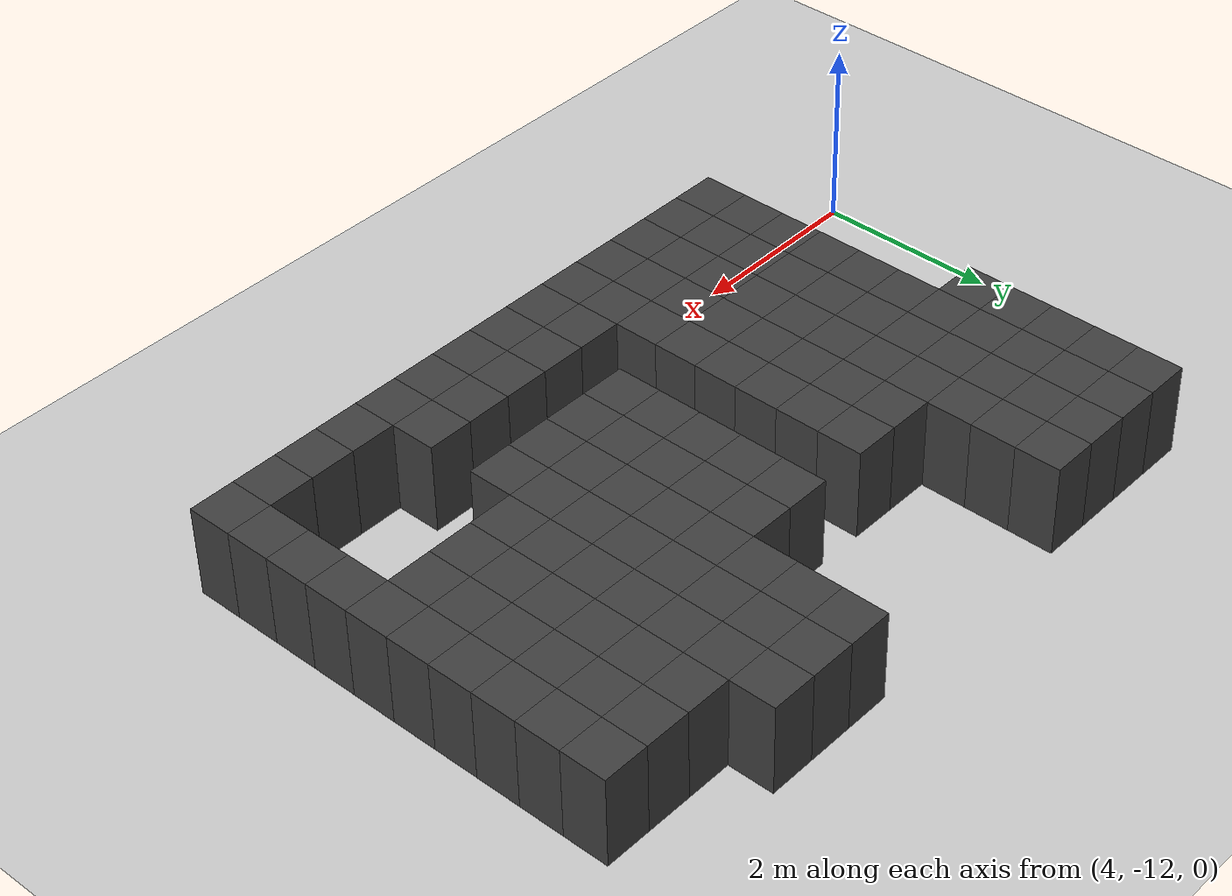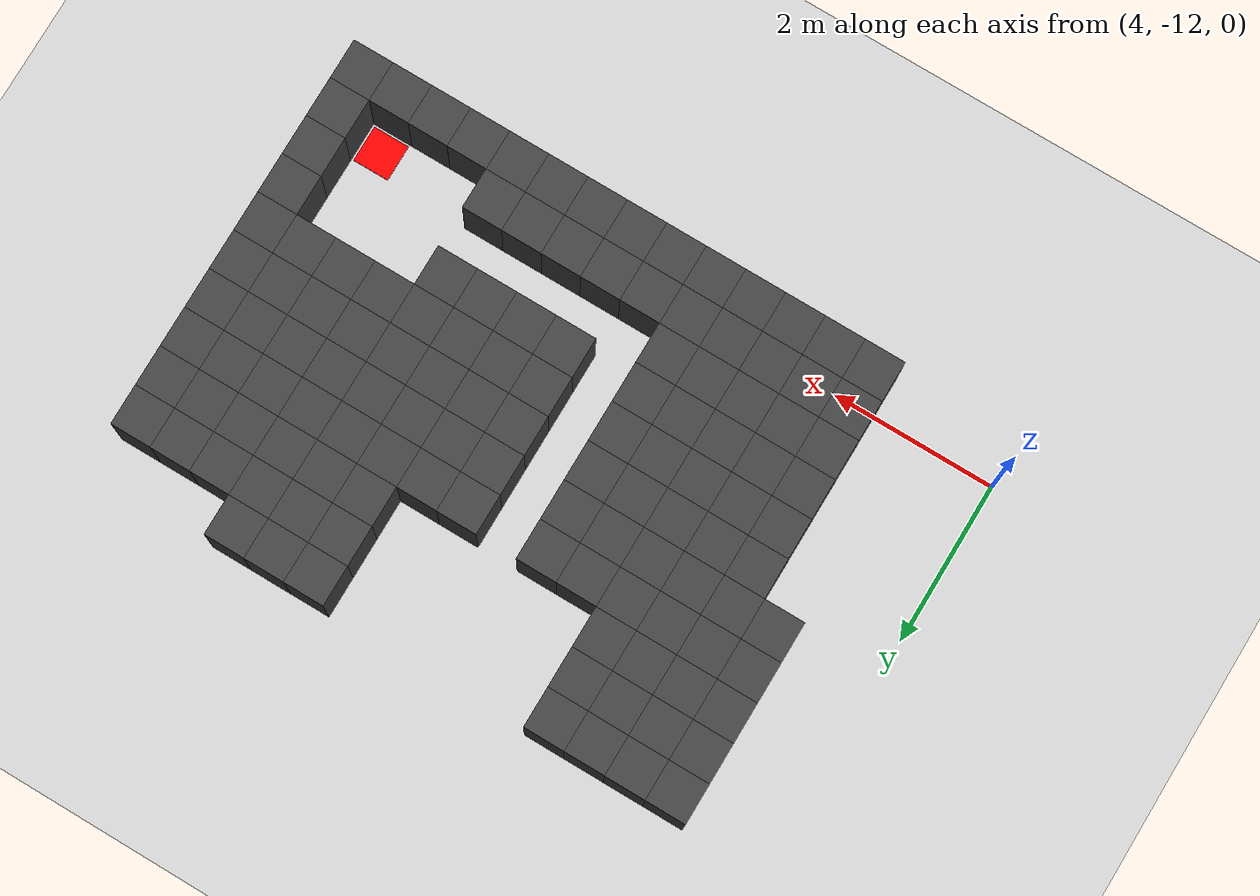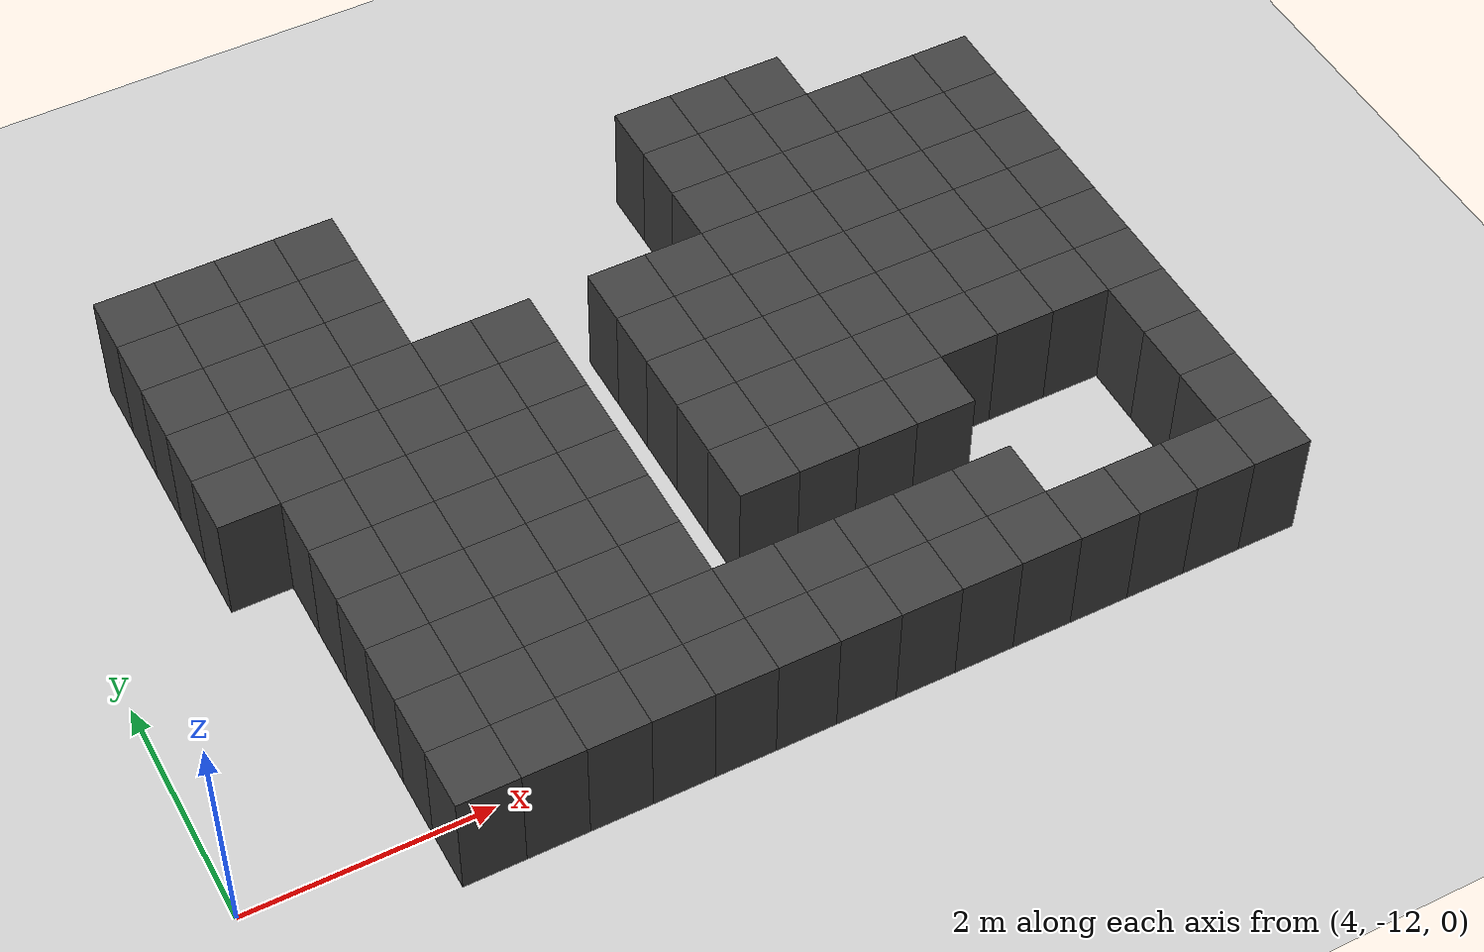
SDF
<sdf version="1.7">
 <world name="map_14074">
  <model name="ground_plane">
   <static>true</static>
   <link name="link">
    <collision name="collision">
     <geometry><plane><normal>0 0 1</normal><size>200 200</size></plane></geometry>
    </collision>
    <visual name="visual">
     <geometry><plane><normal>0 0 1</normal><size>200 200</size></plane></geometry>
     <material><ambient>0.8 0.8 0.8 1</ambient><diffuse>0.8 0.8 0.8 1</diffuse></material>
    </visual>
   </link>
  </model>
  <model name="maze_environment">
   <static>true</static>
   <link name="wall_1442">
    <pose>5.250 -7.250 0.500 0 0 0</pose>
    <collision name="col"><geometry><box><size>0.5 0.5 1.0</size></box></geometry></collision>
    <visual name="vis">
     <geometry><box><size>0.5 0.5 1.0</size></box></geometry>
     <material><ambient>0.15 0.15 0.15 1</ambient><diffuse>0.25 0.25 0.25 1</diffuse></material>
    </visual>
   </link>
   <link name="wall_1443">
    <pose>5.750 -7.250 0.500 0 0 0</pose>
    <collision name="col"><geometry><box><size>0.5 0.5 1.0</size></box></geometry></collision>
    <visual name="vis">
     <geometry><box><size>0.5 0.5 1.0</size></box></geometry>
     <material><ambient>0.15 0.15 0.15 1</ambient><diffuse>0.25 0.25 0.25 1</diffuse></material>
    </visual>
   </link>
   <link name="wall_1444">
    <pose>6.250 -7.250 0.500 0 0 0</pose>
    <collision name="col"><geometry><box><size>0.5 0.5 1.0</size></box></geometry></collision>
    <visual name="vis">
     <geometry><box><size>0.5 0.5 1.0</size></box></geometry>
     <material><ambient>0.15 0.15 0.15 1</ambient><diffuse>0.25 0.25 0.25 1</diffuse></material>
    </visual>
   </link>
   <link name="wall_1445">
    <pose>6.750 -7.250 0.500 0 0 0</pose>
    <collision name="col"><geometry><box><size>0.5 0.5 1.0</size></box></geometry></collision>
    <visual name="vis">
     <geometry><box><size>0.5 0.5 1.0</size></box></geometry>
     <material><ambient>0.15 0.15 0.15 1</ambient><diffuse>0.25 0.25 0.25 1</diffuse></material>
    </visual>
   </link>
   <link name="wall_1446">
    <pose>9.750 -7.250 0.500 0 0 0</pose>
    <collision name="col"><geometry><box><size>0.5 0.5 1.0</size></box></geometry></collision>
    <visual name="vis">
     <geometry><box><size>0.5 0.5 1.0</size></box></geometry>
     <material><ambient>0.15 0.15 0.15 1</ambient><diffuse>0.25 0.25 0.25 1</diffuse></material>
    </visual>
   </link>
   <link name="wall_1447">
    <pose>10.250 -7.250 0.500 0 0 0</pose>
    <collision name="col"><geometry><box><size>0.5 0.5 1.0</size></box></geometry></collision>
    <visual name="vis">
     <geometry><box><size>0.5 0.5 1.0</size></box></geometry>
     <material><ambient>0.15 0.15 0.15 1</ambient><diffuse>0.25 0.25 0.25 1</diffuse></material>
    </visual>
   </link>
   <link name="wall_1448">
    <pose>10.750 -7.250 0.500 0 0 0</pose>
    <collision name="col"><geometry><box><size>0.5 0.5 1.0</size></box></geometry></collision>
    <visual name="vis">
     <geometry><box><size>0.5 0.5 1.0</size></box></geometry>
     <material><ambient>0.15 0.15 0.15 1</ambient><diffuse>0.25 0.25 0.25 1</diffuse></material>
    </visual>
   </link>
   <link name="wall_1467">
    <pose>5.250 -7.750 0.500 0 0 0</pose>
    <collision name="col"><geometry><box><size>0.5 0.5 1.0</size></box></geometry></collision>
    <visual name="vis">
     <geometry><box><size>0.5 0.5 1.0</size></box></geometry>
     <material><ambient>0.15 0.15 0.15 1</ambient><diffuse>0.25 0.25 0.25 1</diffuse></material>
    </visual>
   </link>
   <link name="wall_1468">
    <pose>5.750 -7.750 0.500 0 0 0</pose>
    <collision name="col"><geometry><box><size>0.5 0.5 1.0</size></box></geometry></collision>
    <visual name="vis">
     <geometry><box><size>0.5 0.5 1.0</size></box></geometry>
     <material><ambient>0.15 0.15 0.15 1</ambient><diffuse>0.25 0.25 0.25 1</diffuse></material>
    </visual>
   </link>
   <link name="wall_1469">
    <pose>6.250 -7.750 0.500 0 0 0</pose>
    <collision name="col"><geometry><box><size>0.5 0.5 1.0</size></box></geometry></collision>
    <visual name="vis">
     <geometry><box><size>0.5 0.5 1.0</size></box></geometry>
     <material><ambient>0.15 0.15 0.15 1</ambient><diffuse>0.25 0.25 0.25 1</diffuse></material>
    </visual>
   </link>
   <link name="wall_1470">
    <pose>6.750 -7.750 0.500 0 0 0</pose>
    <collision name="col"><geometry><box><size>0.5 0.5 1.0</size></box></geometry></collision>
    <visual name="vis">
     <geometry><box><size>0.5 0.5 1.0</size></box></geometry>
     <material><ambient>0.15 0.15 0.15 1</ambient><diffuse>0.25 0.25 0.25 1</diffuse></material>
    </visual>
   </link>
   <link name="wall_1471">
    <pose>9.750 -7.750 0.500 0 0 0</pose>
    <collision name="col"><geometry><box><size>0.5 0.5 1.0</size></box></geometry></collision>
    <visual name="vis">
     <geometry><box><size>0.5 0.5 1.0</size></box></geometry>
     <material><ambient>0.15 0.15 0.15 1</ambient><diffuse>0.25 0.25 0.25 1</diffuse></material>
    </visual>
   </link>
   <link name="wall_1472">
    <pose>10.250 -7.750 0.500 0 0 0</pose>
    <collision name="col"><geometry><box><size>0.5 0.5 1.0</size></box></geometry></collision>
    <visual name="vis">
     <geometry><box><size>0.5 0.5 1.0</size></box></geometry>
     <material><ambient>0.15 0.15 0.15 1</ambient><diffuse>0.25 0.25 0.25 1</diffuse></material>
    </visual>
   </link>
   <link name="wall_1473">
    <pose>10.750 -7.750 0.500 0 0 0</pose>
    <collision name="col"><geometry><box><size>0.5 0.5 1.0</size></box></geometry></collision>
    <visual name="vis">
     <geometry><box><size>0.5 0.5 1.0</size></box></geometry>
     <material><ambient>0.15 0.15 0.15 1</ambient><diffuse>0.25 0.25 0.25 1</diffuse></material>
    </visual>
   </link>
   <link name="wall_1474">
    <pose>11.250 -7.750 0.500 0 0 0</pose>
    <collision name="col"><geometry><box><size>0.5 0.5 1.0</size></box></geometry></collision>
    <visual name="vis">
     <geometry><box><size>0.5 0.5 1.0</size></box></geometry>
     <material><ambient>0.15 0.15 0.15 1</ambient><diffuse>0.25 0.25 0.25 1</diffuse></material>
    </visual>
   </link>
   <link name="wall_1475">
    <pose>11.750 -7.750 0.500 0 0 0</pose>
    <collision name="col"><geometry><box><size>0.5 0.5 1.0</size></box></geometry></collision>
    <visual name="vis">
     <geometry><box><size>0.5 0.5 1.0</size></box></geometry>
     <material><ambient>0.15 0.15 0.15 1</ambient><diffuse>0.25 0.25 0.25 1</diffuse></material>
    </visual>
   </link>
   <link name="wall_1476">
    <pose>12.250 -7.750 0.500 0 0 0</pose>
    <collision name="col"><geometry><box><size>0.5 0.5 1.0</size></box></geometry></collision>
    <visual name="vis">
     <geometry><box><size>0.5 0.5 1.0</size></box></geometry>
     <material><ambient>0.15 0.15 0.15 1</ambient><diffuse>0.25 0.25 0.25 1</diffuse></material>
    </visual>
   </link>
   <link name="wall_1494">
    <pose>5.250 -8.250 0.500 0 0 0</pose>
    <collision name="col"><geometry><box><size>0.5 0.5 1.0</size></box></geometry></collision>
    <visual name="vis">
     <geometry><box><size>0.5 0.5 1.0</size></box></geometry>
     <material><ambient>0.15 0.15 0.15 1</ambient><diffuse>0.25 0.25 0.25 1</diffuse></material>
    </visual>
   </link>
   <link name="wall_1495">
    <pose>5.750 -8.250 0.500 0 0 0</pose>
    <collision name="col"><geometry><box><size>0.5 0.5 1.0</size></box></geometry></collision>
    <visual name="vis">
     <geometry><box><size>0.5 0.5 1.0</size></box></geometry>
     <material><ambient>0.15 0.15 0.15 1</ambient><diffuse>0.25 0.25 0.25 1</diffuse></material>
    </visual>
   </link>
   <link name="wall_1496">
    <pose>6.250 -8.250 0.500 0 0 0</pose>
    <collision name="col"><geometry><box><size>0.5 0.5 1.0</size></box></geometry></collision>
    <visual name="vis">
     <geometry><box><size>0.5 0.5 1.0</size></box></geometry>
     <material><ambient>0.15 0.15 0.15 1</ambient><diffuse>0.25 0.25 0.25 1</diffuse></material>
    </visual>
   </link>
   <link name="wall_1497">
    <pose>6.750 -8.250 0.500 0 0 0</pose>
    <collision name="col"><geometry><box><size>0.5 0.5 1.0</size></box></geometry></collision>
    <visual name="vis">
     <geometry><box><size>0.5 0.5 1.0</size></box></geometry>
     <material><ambient>0.15 0.15 0.15 1</ambient><diffuse>0.25 0.25 0.25 1</diffuse></material>
    </visual>
   </link>
   <link name="wall_1498">
    <pose>9.750 -8.250 0.500 0 0 0</pose>
    <collision name="col"><geometry><box><size>0.5 0.5 1.0</size></box></geometry></collision>
    <visual name="vis">
     <geometry><box><size>0.5 0.5 1.0</size></box></geometry>
     <material><ambient>0.15 0.15 0.15 1</ambient><diffuse>0.25 0.25 0.25 1</diffuse></material>
    </visual>
   </link>
   <link name="wall_1499">
    <pose>10.250 -8.250 0.500 0 0 0</pose>
    <collision name="col"><geometry><box><size>0.5 0.5 1.0</size></box></geometry></collision>
    <visual name="vis">
     <geometry><box><size>0.5 0.5 1.0</size></box></geometry>
     <material><ambient>0.15 0.15 0.15 1</ambient><diffuse>0.25 0.25 0.25 1</diffuse></material>
    </visual>
   </link>
   <link name="wall_1500">
    <pose>10.750 -8.250 0.500 0 0 0</pose>
    <collision name="col"><geometry><box><size>0.5 0.5 1.0</size></box></geometry></collision>
    <visual name="vis">
     <geometry><box><size>0.5 0.5 1.0</size></box></geometry>
     <material><ambient>0.15 0.15 0.15 1</ambient><diffuse>0.25 0.25 0.25 1</diffuse></material>
    </visual>
   </link>
   <link name="wall_1501">
    <pose>11.250 -8.250 0.500 0 0 0</pose>
    <collision name="col"><geometry><box><size>0.5 0.5 1.0</size></box></geometry></collision>
    <visual name="vis">
     <geometry><box><size>0.5 0.5 1.0</size></box></geometry>
     <material><ambient>0.15 0.15 0.15 1</ambient><diffuse>0.25 0.25 0.25 1</diffuse></material>
    </visual>
   </link>
   <link name="wall_1502">
    <pose>11.750 -8.250 0.500 0 0 0</pose>
    <collision name="col"><geometry><box><size>0.5 0.5 1.0</size></box></geometry></collision>
    <visual name="vis">
     <geometry><box><size>0.5 0.5 1.0</size></box></geometry>
     <material><ambient>0.15 0.15 0.15 1</ambient><diffuse>0.25 0.25 0.25 1</diffuse></material>
    </visual>
   </link>
   <link name="wall_1503">
    <pose>12.250 -8.250 0.500 0 0 0</pose>
    <collision name="col"><geometry><box><size>0.5 0.5 1.0</size></box></geometry></collision>
    <visual name="vis">
     <geometry><box><size>0.5 0.5 1.0</size></box></geometry>
     <material><ambient>0.15 0.15 0.15 1</ambient><diffuse>0.25 0.25 0.25 1</diffuse></material>
    </visual>
   </link>
   <link name="wall_1529">
    <pose>5.250 -8.750 0.500 0 0 0</pose>
    <collision name="col"><geometry><box><size>0.5 0.5 1.0</size></box></geometry></collision>
    <visual name="vis">
     <geometry><box><size>0.5 0.5 1.0</size></box></geometry>
     <material><ambient>0.15 0.15 0.15 1</ambient><diffuse>0.25 0.25 0.25 1</diffuse></material>
    </visual>
   </link>
   <link name="wall_1530">
    <pose>5.750 -8.750 0.500 0 0 0</pose>
    <collision name="col"><geometry><box><size>0.5 0.5 1.0</size></box></geometry></collision>
    <visual name="vis">
     <geometry><box><size>0.5 0.5 1.0</size></box></geometry>
     <material><ambient>0.15 0.15 0.15 1</ambient><diffuse>0.25 0.25 0.25 1</diffuse></material>
    </visual>
   </link>
   <link name="wall_1531">
    <pose>6.250 -8.750 0.500 0 0 0</pose>
    <collision name="col"><geometry><box><size>0.5 0.5 1.0</size></box></geometry></collision>
    <visual name="vis">
     <geometry><box><size>0.5 0.5 1.0</size></box></geometry>
     <material><ambient>0.15 0.15 0.15 1</ambient><diffuse>0.25 0.25 0.25 1</diffuse></material>
    </visual>
   </link>
   <link name="wall_1532">
    <pose>6.750 -8.750 0.500 0 0 0</pose>
    <collision name="col"><geometry><box><size>0.5 0.5 1.0</size></box></geometry></collision>
    <visual name="vis">
     <geometry><box><size>0.5 0.5 1.0</size></box></geometry>
     <material><ambient>0.15 0.15 0.15 1</ambient><diffuse>0.25 0.25 0.25 1</diffuse></material>
    </visual>
   </link>
   <link name="wall_1533">
    <pose>7.250 -8.750 0.500 0 0 0</pose>
    <collision name="col"><geometry><box><size>0.5 0.5 1.0</size></box></geometry></collision>
    <visual name="vis">
     <geometry><box><size>0.5 0.5 1.0</size></box></geometry>
     <material><ambient>0.15 0.15 0.15 1</ambient><diffuse>0.25 0.25 0.25 1</diffuse></material>
    </visual>
   </link>
   <link name="wall_1534">
    <pose>7.750 -8.750 0.500 0 0 0</pose>
    <collision name="col"><geometry><box><size>0.5 0.5 1.0</size></box></geometry></collision>
    <visual name="vis">
     <geometry><box><size>0.5 0.5 1.0</size></box></geometry>
     <material><ambient>0.15 0.15 0.15 1</ambient><diffuse>0.25 0.25 0.25 1</diffuse></material>
    </visual>
   </link>
   <link name="wall_1535">
    <pose>8.750 -8.750 0.500 0 0 0</pose>
    <collision name="col"><geometry><box><size>0.5 0.5 1.0</size></box></geometry></collision>
    <visual name="vis">
     <geometry><box><size>0.5 0.5 1.0</size></box></geometry>
     <material><ambient>0.15 0.15 0.15 1</ambient><diffuse>0.25 0.25 0.25 1</diffuse></material>
    </visual>
   </link>
   <link name="wall_1536">
    <pose>9.250 -8.750 0.500 0 0 0</pose>
    <collision name="col"><geometry><box><size>0.5 0.5 1.0</size></box></geometry></collision>
    <visual name="vis">
     <geometry><box><size>0.5 0.5 1.0</size></box></geometry>
     <material><ambient>0.15 0.15 0.15 1</ambient><diffuse>0.25 0.25 0.25 1</diffuse></material>
    </visual>
   </link>
   <link name="wall_1537">
    <pose>9.750 -8.750 0.500 0 0 0</pose>
    <collision name="col"><geometry><box><size>0.5 0.5 1.0</size></box></geometry></collision>
    <visual name="vis">
     <geometry><box><size>0.5 0.5 1.0</size></box></geometry>
     <material><ambient>0.15 0.15 0.15 1</ambient><diffuse>0.25 0.25 0.25 1</diffuse></material>
    </visual>
   </link>
   <link name="wall_1538">
    <pose>10.250 -8.750 0.500 0 0 0</pose>
    <collision name="col"><geometry><box><size>0.5 0.5 1.0</size></box></geometry></collision>
    <visual name="vis">
     <geometry><box><size>0.5 0.5 1.0</size></box></geometry>
     <material><ambient>0.15 0.15 0.15 1</ambient><diffuse>0.25 0.25 0.25 1</diffuse></material>
    </visual>
   </link>
   <link name="wall_1539">
    <pose>10.750 -8.750 0.500 0 0 0</pose>
    <collision name="col"><geometry><box><size>0.5 0.5 1.0</size></box></geometry></collision>
    <visual name="vis">
     <geometry><box><size>0.5 0.5 1.0</size></box></geometry>
     <material><ambient>0.15 0.15 0.15 1</ambient><diffuse>0.25 0.25 0.25 1</diffuse></material>
    </visual>
   </link>
   <link name="wall_1540">
    <pose>11.250 -8.750 0.500 0 0 0</pose>
    <collision name="col"><geometry><box><size>0.5 0.5 1.0</size></box></geometry></collision>
    <visual name="vis">
     <geometry><box><size>0.5 0.5 1.0</size></box></geometry>
     <material><ambient>0.15 0.15 0.15 1</ambient><diffuse>0.25 0.25 0.25 1</diffuse></material>
    </visual>
   </link>
   <link name="wall_1541">
    <pose>11.750 -8.750 0.500 0 0 0</pose>
    <collision name="col"><geometry><box><size>0.5 0.5 1.0</size></box></geometry></collision>
    <visual name="vis">
     <geometry><box><size>0.5 0.5 1.0</size></box></geometry>
     <material><ambient>0.15 0.15 0.15 1</ambient><diffuse>0.25 0.25 0.25 1</diffuse></material>
    </visual>
   </link>
   <link name="wall_1542">
    <pose>12.250 -8.750 0.500 0 0 0</pose>
    <collision name="col"><geometry><box><size>0.5 0.5 1.0</size></box></geometry></collision>
    <visual name="vis">
     <geometry><box><size>0.5 0.5 1.0</size></box></geometry>
     <material><ambient>0.15 0.15 0.15 1</ambient><diffuse>0.25 0.25 0.25 1</diffuse></material>
    </visual>
   </link>
   <link name="wall_1568">
    <pose>5.250 -9.250 0.500 0 0 0</pose>
    <collision name="col"><geometry><box><size>0.5 0.5 1.0</size></box></geometry></collision>
    <visual name="vis">
     <geometry><box><size>0.5 0.5 1.0</size></box></geometry>
     <material><ambient>0.15 0.15 0.15 1</ambient><diffuse>0.25 0.25 0.25 1</diffuse></material>
    </visual>
   </link>
   <link name="wall_1569">
    <pose>5.750 -9.250 0.500 0 0 0</pose>
    <collision name="col"><geometry><box><size>0.5 0.5 1.0</size></box></geometry></collision>
    <visual name="vis">
     <geometry><box><size>0.5 0.5 1.0</size></box></geometry>
     <material><ambient>0.15 0.15 0.15 1</ambient><diffuse>0.25 0.25 0.25 1</diffuse></material>
    </visual>
   </link>
   <link name="wall_1570">
    <pose>6.250 -9.250 0.500 0 0 0</pose>
    <collision name="col"><geometry><box><size>0.5 0.5 1.0</size></box></geometry></collision>
    <visual name="vis">
     <geometry><box><size>0.5 0.5 1.0</size></box></geometry>
     <material><ambient>0.15 0.15 0.15 1</ambient><diffuse>0.25 0.25 0.25 1</diffuse></material>
    </visual>
   </link>
   <link name="wall_1571">
    <pose>6.750 -9.250 0.500 0 0 0</pose>
    <collision name="col"><geometry><box><size>0.5 0.5 1.0</size></box></geometry></collision>
    <visual name="vis">
     <geometry><box><size>0.5 0.5 1.0</size></box></geometry>
     <material><ambient>0.15 0.15 0.15 1</ambient><diffuse>0.25 0.25 0.25 1</diffuse></material>
    </visual>
   </link>
   <link name="wall_1572">
    <pose>7.250 -9.250 0.500 0 0 0</pose>
    <collision name="col"><geometry><box><size>0.5 0.5 1.0</size></box></geometry></collision>
    <visual name="vis">
     <geometry><box><size>0.5 0.5 1.0</size></box></geometry>
     <material><ambient>0.15 0.15 0.15 1</ambient><diffuse>0.25 0.25 0.25 1</diffuse></material>
    </visual>
   </link>
   <link name="wall_1573">
    <pose>7.750 -9.250 0.500 0 0 0</pose>
    <collision name="col"><geometry><box><size>0.5 0.5 1.0</size></box></geometry></collision>
    <visual name="vis">
     <geometry><box><size>0.5 0.5 1.0</size></box></geometry>
     <material><ambient>0.15 0.15 0.15 1</ambient><diffuse>0.25 0.25 0.25 1</diffuse></material>
    </visual>
   </link>
   <link name="wall_1574">
    <pose>8.750 -9.250 0.500 0 0 0</pose>
    <collision name="col"><geometry><box><size>0.5 0.5 1.0</size></box></geometry></collision>
    <visual name="vis">
     <geometry><box><size>0.5 0.5 1.0</size></box></geometry>
     <material><ambient>0.15 0.15 0.15 1</ambient><diffuse>0.25 0.25 0.25 1</diffuse></material>
    </visual>
   </link>
   <link name="wall_1575">
    <pose>9.250 -9.250 0.500 0 0 0</pose>
    <collision name="col"><geometry><box><size>0.5 0.5 1.0</size></box></geometry></collision>
    <visual name="vis">
     <geometry><box><size>0.5 0.5 1.0</size></box></geometry>
     <material><ambient>0.15 0.15 0.15 1</ambient><diffuse>0.25 0.25 0.25 1</diffuse></material>
    </visual>
   </link>
   <link name="wall_1576">
    <pose>9.750 -9.250 0.500 0 0 0</pose>
    <collision name="col"><geometry><box><size>0.5 0.5 1.0</size></box></geometry></collision>
    <visual name="vis">
     <geometry><box><size>0.5 0.5 1.0</size></box></geometry>
     <material><ambient>0.15 0.15 0.15 1</ambient><diffuse>0.25 0.25 0.25 1</diffuse></material>
    </visual>
   </link>
   <link name="wall_1577">
    <pose>10.250 -9.250 0.500 0 0 0</pose>
    <collision name="col"><geometry><box><size>0.5 0.5 1.0</size></box></geometry></collision>
    <visual name="vis">
     <geometry><box><size>0.5 0.5 1.0</size></box></geometry>
     <material><ambient>0.15 0.15 0.15 1</ambient><diffuse>0.25 0.25 0.25 1</diffuse></material>
    </visual>
   </link>
   <link name="wall_1578">
    <pose>10.750 -9.250 0.500 0 0 0</pose>
    <collision name="col"><geometry><box><size>0.5 0.5 1.0</size></box></geometry></collision>
    <visual name="vis">
     <geometry><box><size>0.5 0.5 1.0</size></box></geometry>
     <material><ambient>0.15 0.15 0.15 1</ambient><diffuse>0.25 0.25 0.25 1</diffuse></material>
    </visual>
   </link>
   <link name="wall_1579">
    <pose>11.250 -9.250 0.500 0 0 0</pose>
    <collision name="col"><geometry><box><size>0.5 0.5 1.0</size></box></geometry></collision>
    <visual name="vis">
     <geometry><box><size>0.5 0.5 1.0</size></box></geometry>
     <material><ambient>0.15 0.15 0.15 1</ambient><diffuse>0.25 0.25 0.25 1</diffuse></material>
    </visual>
   </link>
   <link name="wall_1580">
    <pose>11.750 -9.250 0.500 0 0 0</pose>
    <collision name="col"><geometry><box><size>0.5 0.5 1.0</size></box></geometry></collision>
    <visual name="vis">
     <geometry><box><size>0.5 0.5 1.0</size></box></geometry>
     <material><ambient>0.15 0.15 0.15 1</ambient><diffuse>0.25 0.25 0.25 1</diffuse></material>
    </visual>
   </link>
   <link name="wall_1581">
    <pose>12.250 -9.250 0.500 0 0 0</pose>
    <collision name="col"><geometry><box><size>0.5 0.5 1.0</size></box></geometry></collision>
    <visual name="vis">
     <geometry><box><size>0.5 0.5 1.0</size></box></geometry>
     <material><ambient>0.15 0.15 0.15 1</ambient><diffuse>0.25 0.25 0.25 1</diffuse></material>
    </visual>
   </link>
   <link name="wall_1608">
    <pose>5.750 -9.750 0.500 0 0 0</pose>
    <collision name="col"><geometry><box><size>0.5 0.5 1.0</size></box></geometry></collision>
    <visual name="vis">
     <geometry><box><size>0.5 0.5 1.0</size></box></geometry>
     <material><ambient>0.15 0.15 0.15 1</ambient><diffuse>0.25 0.25 0.25 1</diffuse></material>
    </visual>
   </link>
   <link name="wall_1609">
    <pose>6.250 -9.750 0.500 0 0 0</pose>
    <collision name="col"><geometry><box><size>0.5 0.5 1.0</size></box></geometry></collision>
    <visual name="vis">
     <geometry><box><size>0.5 0.5 1.0</size></box></geometry>
     <material><ambient>0.15 0.15 0.15 1</ambient><diffuse>0.25 0.25 0.25 1</diffuse></material>
    </visual>
   </link>
   <link name="wall_1610">
    <pose>6.750 -9.750 0.500 0 0 0</pose>
    <collision name="col"><geometry><box><size>0.5 0.5 1.0</size></box></geometry></collision>
    <visual name="vis">
     <geometry><box><size>0.5 0.5 1.0</size></box></geometry>
     <material><ambient>0.15 0.15 0.15 1</ambient><diffuse>0.25 0.25 0.25 1</diffuse></material>
    </visual>
   </link>
   <link name="wall_1611">
    <pose>7.250 -9.750 0.500 0 0 0</pose>
    <collision name="col"><geometry><box><size>0.5 0.5 1.0</size></box></geometry></collision>
    <visual name="vis">
     <geometry><box><size>0.5 0.5 1.0</size></box></geometry>
     <material><ambient>0.15 0.15 0.15 1</ambient><diffuse>0.25 0.25 0.25 1</diffuse></material>
    </visual>
   </link>
   <link name="wall_1612">
    <pose>7.750 -9.750 0.500 0 0 0</pose>
    <collision name="col"><geometry><box><size>0.5 0.5 1.0</size></box></geometry></collision>
    <visual name="vis">
     <geometry><box><size>0.5 0.5 1.0</size></box></geometry>
     <material><ambient>0.15 0.15 0.15 1</ambient><diffuse>0.25 0.25 0.25 1</diffuse></material>
    </visual>
   </link>
   <link name="wall_1613">
    <pose>8.750 -9.750 0.500 0 0 0</pose>
    <collision name="col"><geometry><box><size>0.5 0.5 1.0</size></box></geometry></collision>
    <visual name="vis">
     <geometry><box><size>0.5 0.5 1.0</size></box></geometry>
     <material><ambient>0.15 0.15 0.15 1</ambient><diffuse>0.25 0.25 0.25 1</diffuse></material>
    </visual>
   </link>
   <link name="wall_1614">
    <pose>9.250 -9.750 0.500 0 0 0</pose>
    <collision name="col"><geometry><box><size>0.5 0.5 1.0</size></box></geometry></collision>
    <visual name="vis">
     <geometry><box><size>0.5 0.5 1.0</size></box></geometry>
     <material><ambient>0.15 0.15 0.15 1</ambient><diffuse>0.25 0.25 0.25 1</diffuse></material>
    </visual>
   </link>
   <link name="wall_1615">
    <pose>9.750 -9.750 0.500 0 0 0</pose>
    <collision name="col"><geometry><box><size>0.5 0.5 1.0</size></box></geometry></collision>
    <visual name="vis">
     <geometry><box><size>0.5 0.5 1.0</size></box></geometry>
     <material><ambient>0.15 0.15 0.15 1</ambient><diffuse>0.25 0.25 0.25 1</diffuse></material>
    </visual>
   </link>
   <link name="wall_1616">
    <pose>10.250 -9.750 0.500 0 0 0</pose>
    <collision name="col"><geometry><box><size>0.5 0.5 1.0</size></box></geometry></collision>
    <visual name="vis">
     <geometry><box><size>0.5 0.5 1.0</size></box></geometry>
     <material><ambient>0.15 0.15 0.15 1</ambient><diffuse>0.25 0.25 0.25 1</diffuse></material>
    </visual>
   </link>
   <link name="wall_1617">
    <pose>10.750 -9.750 0.500 0 0 0</pose>
    <collision name="col"><geometry><box><size>0.5 0.5 1.0</size></box></geometry></collision>
    <visual name="vis">
     <geometry><box><size>0.5 0.5 1.0</size></box></geometry>
     <material><ambient>0.15 0.15 0.15 1</ambient><diffuse>0.25 0.25 0.25 1</diffuse></material>
    </visual>
   </link>
   <link name="wall_1618">
    <pose>11.250 -9.750 0.500 0 0 0</pose>
    <collision name="col"><geometry><box><size>0.5 0.5 1.0</size></box></geometry></collision>
    <visual name="vis">
     <geometry><box><size>0.5 0.5 1.0</size></box></geometry>
     <material><ambient>0.15 0.15 0.15 1</ambient><diffuse>0.25 0.25 0.25 1</diffuse></material>
    </visual>
   </link>
   <link name="wall_1619">
    <pose>11.750 -9.750 0.500 0 0 0</pose>
    <collision name="col"><geometry><box><size>0.5 0.5 1.0</size></box></geometry></collision>
    <visual name="vis">
     <geometry><box><size>0.5 0.5 1.0</size></box></geometry>
     <material><ambient>0.15 0.15 0.15 1</ambient><diffuse>0.25 0.25 0.25 1</diffuse></material>
    </visual>
   </link>
   <link name="wall_1620">
    <pose>12.250 -9.750 0.500 0 0 0</pose>
    <collision name="col"><geometry><box><size>0.5 0.5 1.0</size></box></geometry></collision>
    <visual name="vis">
     <geometry><box><size>0.5 0.5 1.0</size></box></geometry>
     <material><ambient>0.15 0.15 0.15 1</ambient><diffuse>0.25 0.25 0.25 1</diffuse></material>
    </visual>
   </link>
   <link name="wall_1649">
    <pose>5.750 -10.250 0.500 0 0 0</pose>
    <collision name="col"><geometry><box><size>0.5 0.5 1.0</size></box></geometry></collision>
    <visual name="vis">
     <geometry><box><size>0.5 0.5 1.0</size></box></geometry>
     <material><ambient>0.15 0.15 0.15 1</ambient><diffuse>0.25 0.25 0.25 1</diffuse></material>
    </visual>
   </link>
   <link name="wall_1650">
    <pose>6.250 -10.250 0.500 0 0 0</pose>
    <collision name="col"><geometry><box><size>0.5 0.5 1.0</size></box></geometry></collision>
    <visual name="vis">
     <geometry><box><size>0.5 0.5 1.0</size></box></geometry>
     <material><ambient>0.15 0.15 0.15 1</ambient><diffuse>0.25 0.25 0.25 1</diffuse></material>
    </visual>
   </link>
   <link name="wall_1651">
    <pose>6.750 -10.250 0.500 0 0 0</pose>
    <collision name="col"><geometry><box><size>0.5 0.5 1.0</size></box></geometry></collision>
    <visual name="vis">
     <geometry><box><size>0.5 0.5 1.0</size></box></geometry>
     <material><ambient>0.15 0.15 0.15 1</ambient><diffuse>0.25 0.25 0.25 1</diffuse></material>
    </visual>
   </link>
   <link name="wall_1652">
    <pose>7.250 -10.250 0.500 0 0 0</pose>
    <collision name="col"><geometry><box><size>0.5 0.5 1.0</size></box></geometry></collision>
    <visual name="vis">
     <geometry><box><size>0.5 0.5 1.0</size></box></geometry>
     <material><ambient>0.15 0.15 0.15 1</ambient><diffuse>0.25 0.25 0.25 1</diffuse></material>
    </visual>
   </link>
   <link name="wall_1653">
    <pose>7.750 -10.250 0.500 0 0 0</pose>
    <collision name="col"><geometry><box><size>0.5 0.5 1.0</size></box></geometry></collision>
    <visual name="vis">
     <geometry><box><size>0.5 0.5 1.0</size></box></geometry>
     <material><ambient>0.15 0.15 0.15 1</ambient><diffuse>0.25 0.25 0.25 1</diffuse></material>
    </visual>
   </link>
   <link name="wall_1654">
    <pose>8.750 -10.250 0.500 0 0 0</pose>
    <collision name="col"><geometry><box><size>0.5 0.5 1.0</size></box></geometry></collision>
    <visual name="vis">
     <geometry><box><size>0.5 0.5 1.0</size></box></geometry>
     <material><ambient>0.15 0.15 0.15 1</ambient><diffuse>0.25 0.25 0.25 1</diffuse></material>
    </visual>
   </link>
   <link name="wall_1655">
    <pose>9.250 -10.250 0.500 0 0 0</pose>
    <collision name="col"><geometry><box><size>0.5 0.5 1.0</size></box></geometry></collision>
    <visual name="vis">
     <geometry><box><size>0.5 0.5 1.0</size></box></geometry>
     <material><ambient>0.15 0.15 0.15 1</ambient><diffuse>0.25 0.25 0.25 1</diffuse></material>
    </visual>
   </link>
   <link name="wall_1656">
    <pose>9.750 -10.250 0.500 0 0 0</pose>
    <collision name="col"><geometry><box><size>0.5 0.5 1.0</size></box></geometry></collision>
    <visual name="vis">
     <geometry><box><size>0.5 0.5 1.0</size></box></geometry>
     <material><ambient>0.15 0.15 0.15 1</ambient><diffuse>0.25 0.25 0.25 1</diffuse></material>
    </visual>
   </link>
   <link name="wall_1657">
    <pose>10.250 -10.250 0.500 0 0 0</pose>
    <collision name="col"><geometry><box><size>0.5 0.5 1.0</size></box></geometry></collision>
    <visual name="vis">
     <geometry><box><size>0.5 0.5 1.0</size></box></geometry>
     <material><ambient>0.15 0.15 0.15 1</ambient><diffuse>0.25 0.25 0.25 1</diffuse></material>
    </visual>
   </link>
   <link name="wall_1658">
    <pose>10.750 -10.250 0.500 0 0 0</pose>
    <collision name="col"><geometry><box><size>0.5 0.5 1.0</size></box></geometry></collision>
    <visual name="vis">
     <geometry><box><size>0.5 0.5 1.0</size></box></geometry>
     <material><ambient>0.15 0.15 0.15 1</ambient><diffuse>0.25 0.25 0.25 1</diffuse></material>
    </visual>
   </link>
   <link name="wall_1659">
    <pose>11.250 -10.250 0.500 0 0 0</pose>
    <collision name="col"><geometry><box><size>0.5 0.5 1.0</size></box></geometry></collision>
    <visual name="vis">
     <geometry><box><size>0.5 0.5 1.0</size></box></geometry>
     <material><ambient>0.15 0.15 0.15 1</ambient><diffuse>0.25 0.25 0.25 1</diffuse></material>
    </visual>
   </link>
   <link name="wall_1660">
    <pose>11.750 -10.250 0.500 0 0 0</pose>
    <collision name="col"><geometry><box><size>0.5 0.5 1.0</size></box></geometry></collision>
    <visual name="vis">
     <geometry><box><size>0.5 0.5 1.0</size></box></geometry>
     <material><ambient>0.15 0.15 0.15 1</ambient><diffuse>0.25 0.25 0.25 1</diffuse></material>
    </visual>
   </link>
   <link name="wall_1661">
    <pose>12.250 -10.250 0.500 0 0 0</pose>
    <collision name="col"><geometry><box><size>0.5 0.5 1.0</size></box></geometry></collision>
    <visual name="vis">
     <geometry><box><size>0.5 0.5 1.0</size></box></geometry>
     <material><ambient>0.15 0.15 0.15 1</ambient><diffuse>0.25 0.25 0.25 1</diffuse></material>
    </visual>
   </link>
   <link name="wall_1698">
    <pose>5.750 -10.750 0.500 0 0 0</pose>
    <collision name="col"><geometry><box><size>0.5 0.5 1.0</size></box></geometry></collision>
    <visual name="vis">
     <geometry><box><size>0.5 0.5 1.0</size></box></geometry>
     <material><ambient>0.15 0.15 0.15 1</ambient><diffuse>0.25 0.25 0.25 1</diffuse></material>
    </visual>
   </link>
   <link name="wall_1699">
    <pose>6.250 -10.750 0.500 0 0 0</pose>
    <collision name="col"><geometry><box><size>0.5 0.5 1.0</size></box></geometry></collision>
    <visual name="vis">
     <geometry><box><size>0.5 0.5 1.0</size></box></geometry>
     <material><ambient>0.15 0.15 0.15 1</ambient><diffuse>0.25 0.25 0.25 1</diffuse></material>
    </visual>
   </link>
   <link name="wall_1700">
    <pose>6.750 -10.750 0.500 0 0 0</pose>
    <collision name="col"><geometry><box><size>0.5 0.5 1.0</size></box></geometry></collision>
    <visual name="vis">
     <geometry><box><size>0.5 0.5 1.0</size></box></geometry>
     <material><ambient>0.15 0.15 0.15 1</ambient><diffuse>0.25 0.25 0.25 1</diffuse></material>
    </visual>
   </link>
   <link name="wall_1701">
    <pose>7.250 -10.750 0.500 0 0 0</pose>
    <collision name="col"><geometry><box><size>0.5 0.5 1.0</size></box></geometry></collision>
    <visual name="vis">
     <geometry><box><size>0.5 0.5 1.0</size></box></geometry>
     <material><ambient>0.15 0.15 0.15 1</ambient><diffuse>0.25 0.25 0.25 1</diffuse></material>
    </visual>
   </link>
   <link name="wall_1702">
    <pose>7.750 -10.750 0.500 0 0 0</pose>
    <collision name="col"><geometry><box><size>0.5 0.5 1.0</size></box></geometry></collision>
    <visual name="vis">
     <geometry><box><size>0.5 0.5 1.0</size></box></geometry>
     <material><ambient>0.15 0.15 0.15 1</ambient><diffuse>0.25 0.25 0.25 1</diffuse></material>
    </visual>
   </link>
   <link name="wall_1703">
    <pose>8.750 -10.750 0.500 0 0 0</pose>
    <collision name="col"><geometry><box><size>0.5 0.5 1.0</size></box></geometry></collision>
    <visual name="vis">
     <geometry><box><size>0.5 0.5 1.0</size></box></geometry>
     <material><ambient>0.15 0.15 0.15 1</ambient><diffuse>0.25 0.25 0.25 1</diffuse></material>
    </visual>
   </link>
   <link name="wall_1704">
    <pose>9.250 -10.750 0.500 0 0 0</pose>
    <collision name="col"><geometry><box><size>0.5 0.5 1.0</size></box></geometry></collision>
    <visual name="vis">
     <geometry><box><size>0.5 0.5 1.0</size></box></geometry>
     <material><ambient>0.15 0.15 0.15 1</ambient><diffuse>0.25 0.25 0.25 1</diffuse></material>
    </visual>
   </link>
   <link name="wall_1705">
    <pose>9.750 -10.750 0.500 0 0 0</pose>
    <collision name="col"><geometry><box><size>0.5 0.5 1.0</size></box></geometry></collision>
    <visual name="vis">
     <geometry><box><size>0.5 0.5 1.0</size></box></geometry>
     <material><ambient>0.15 0.15 0.15 1</ambient><diffuse>0.25 0.25 0.25 1</diffuse></material>
    </visual>
   </link>
   <link name="wall_1706">
    <pose>10.250 -10.750 0.500 0 0 0</pose>
    <collision name="col"><geometry><box><size>0.5 0.5 1.0</size></box></geometry></collision>
    <visual name="vis">
     <geometry><box><size>0.5 0.5 1.0</size></box></geometry>
     <material><ambient>0.15 0.15 0.15 1</ambient><diffuse>0.25 0.25 0.25 1</diffuse></material>
    </visual>
   </link>
   <link name="wall_1707">
    <pose>12.250 -10.750 0.500 0 0 0</pose>
    <collision name="col"><geometry><box><size>0.5 0.5 1.0</size></box></geometry></collision>
    <visual name="vis">
     <geometry><box><size>0.5 0.5 1.0</size></box></geometry>
     <material><ambient>0.15 0.15 0.15 1</ambient><diffuse>0.25 0.25 0.25 1</diffuse></material>
    </visual>
   </link>
   <link name="wall_1744">
    <pose>5.750 -11.250 0.500 0 0 0</pose>
    <collision name="col"><geometry><box><size>0.5 0.5 1.0</size></box></geometry></collision>
    <visual name="vis">
     <geometry><box><size>0.5 0.5 1.0</size></box></geometry>
     <material><ambient>0.15 0.15 0.15 1</ambient><diffuse>0.25 0.25 0.25 1</diffuse></material>
    </visual>
   </link>
   <link name="wall_1745">
    <pose>6.250 -11.250 0.500 0 0 0</pose>
    <collision name="col"><geometry><box><size>0.5 0.5 1.0</size></box></geometry></collision>
    <visual name="vis">
     <geometry><box><size>0.5 0.5 1.0</size></box></geometry>
     <material><ambient>0.15 0.15 0.15 1</ambient><diffuse>0.25 0.25 0.25 1</diffuse></material>
    </visual>
   </link>
   <link name="wall_1746">
    <pose>6.750 -11.250 0.500 0 0 0</pose>
    <collision name="col"><geometry><box><size>0.5 0.5 1.0</size></box></geometry></collision>
    <visual name="vis">
     <geometry><box><size>0.5 0.5 1.0</size></box></geometry>
     <material><ambient>0.15 0.15 0.15 1</ambient><diffuse>0.25 0.25 0.25 1</diffuse></material>
    </visual>
   </link>
   <link name="wall_1747">
    <pose>7.250 -11.250 0.500 0 0 0</pose>
    <collision name="col"><geometry><box><size>0.5 0.5 1.0</size></box></geometry></collision>
    <visual name="vis">
     <geometry><box><size>0.5 0.5 1.0</size></box></geometry>
     <material><ambient>0.15 0.15 0.15 1</ambient><diffuse>0.25 0.25 0.25 1</diffuse></material>
    </visual>
   </link>
   <link name="wall_1748">
    <pose>7.750 -11.250 0.500 0 0 0</pose>
    <collision name="col"><geometry><box><size>0.5 0.5 1.0</size></box></geometry></collision>
    <visual name="vis">
     <geometry><box><size>0.5 0.5 1.0</size></box></geometry>
     <material><ambient>0.15 0.15 0.15 1</ambient><diffuse>0.25 0.25 0.25 1</diffuse></material>
    </visual>
   </link>
   <link name="wall_1749">
    <pose>12.250 -11.250 0.500 0 0 0</pose>
    <collision name="col"><geometry><box><size>0.5 0.5 1.0</size></box></geometry></collision>
    <visual name="vis">
     <geometry><box><size>0.5 0.5 1.0</size></box></geometry>
     <material><ambient>0.15 0.15 0.15 1</ambient><diffuse>0.25 0.25 0.25 1</diffuse></material>
    </visual>
   </link>
   <link name="wall_1786">
    <pose>5.750 -11.750 0.500 0 0 0</pose>
    <collision name="col"><geometry><box><size>0.5 0.5 1.0</size></box></geometry></collision>
    <visual name="vis">
     <geometry><box><size>0.5 0.5 1.0</size></box></geometry>
     <material><ambient>0.15 0.15 0.15 1</ambient><diffuse>0.25 0.25 0.25 1</diffuse></material>
    </visual>
   </link>
   <link name="wall_1787">
    <pose>6.250 -11.750 0.500 0 0 0</pose>
    <collision name="col"><geometry><box><size>0.5 0.5 1.0</size></box></geometry></collision>
    <visual name="vis">
     <geometry><box><size>0.5 0.5 1.0</size></box></geometry>
     <material><ambient>0.15 0.15 0.15 1</ambient><diffuse>0.25 0.25 0.25 1</diffuse></material>
    </visual>
   </link>
   <link name="wall_1788">
    <pose>6.750 -11.750 0.500 0 0 0</pose>
    <collision name="col"><geometry><box><size>0.5 0.5 1.0</size></box></geometry></collision>
    <visual name="vis">
     <geometry><box><size>0.5 0.5 1.0</size></box></geometry>
     <material><ambient>0.15 0.15 0.15 1</ambient><diffuse>0.25 0.25 0.25 1</diffuse></material>
    </visual>
   </link>
   <link name="wall_1789">
    <pose>7.250 -11.750 0.500 0 0 0</pose>
    <collision name="col"><geometry><box><size>0.5 0.5 1.0</size></box></geometry></collision>
    <visual name="vis">
     <geometry><box><size>0.5 0.5 1.0</size></box></geometry>
     <material><ambient>0.15 0.15 0.15 1</ambient><diffuse>0.25 0.25 0.25 1</diffuse></material>
    </visual>
   </link>
   <link name="wall_1790">
    <pose>7.750 -11.750 0.500 0 0 0</pose>
    <collision name="col"><geometry><box><size>0.5 0.5 1.0</size></box></geometry></collision>
    <visual name="vis">
     <geometry><box><size>0.5 0.5 1.0</size></box></geometry>
     <material><ambient>0.15 0.15 0.15 1</ambient><diffuse>0.25 0.25 0.25 1</diffuse></material>
    </visual>
   </link>
   <link name="wall_1791">
    <pose>8.250 -11.750 0.500 0 0 0</pose>
    <collision name="col"><geometry><box><size>0.5 0.5 1.0</size></box></geometry></collision>
    <visual name="vis">
     <geometry><box><size>0.5 0.5 1.0</size></box></geometry>
     <material><ambient>0.15 0.15 0.15 1</ambient><diffuse>0.25 0.25 0.25 1</diffuse></material>
    </visual>
   </link>
   <link name="wall_1792">
    <pose>8.750 -11.750 0.500 0 0 0</pose>
    <collision name="col"><geometry><box><size>0.5 0.5 1.0</size></box></geometry></collision>
    <visual name="vis">
     <geometry><box><size>0.5 0.5 1.0</size></box></geometry>
     <material><ambient>0.15 0.15 0.15 1</ambient><diffuse>0.25 0.25 0.25 1</diffuse></material>
    </visual>
   </link>
   <link name="wall_1793">
    <pose>9.250 -11.750 0.500 0 0 0</pose>
    <collision name="col"><geometry><box><size>0.5 0.5 1.0</size></box></geometry></collision>
    <visual name="vis">
     <geometry><box><size>0.5 0.5 1.0</size></box></geometry>
     <material><ambient>0.15 0.15 0.15 1</ambient><diffuse>0.25 0.25 0.25 1</diffuse></material>
    </visual>
   </link>
   <link name="wall_1794">
    <pose>9.750 -11.750 0.500 0 0 0</pose>
    <collision name="col"><geometry><box><size>0.5 0.5 1.0</size></box></geometry></collision>
    <visual name="vis">
     <geometry><box><size>0.5 0.5 1.0</size></box></geometry>
     <material><ambient>0.15 0.15 0.15 1</ambient><diffuse>0.25 0.25 0.25 1</diffuse></material>
    </visual>
   </link>
   <link name="wall_1795">
    <pose>10.250 -11.750 0.500 0 0 0</pose>
    <collision name="col"><geometry><box><size>0.5 0.5 1.0</size></box></geometry></collision>
    <visual name="vis">
     <geometry><box><size>0.5 0.5 1.0</size></box></geometry>
     <material><ambient>0.15 0.15 0.15 1</ambient><diffuse>0.25 0.25 0.25 1</diffuse></material>
    </visual>
   </link>
   <link name="wall_1796">
    <pose>12.250 -11.750 0.500 0 0 0</pose>
    <collision name="col"><geometry><box><size>0.5 0.5 1.0</size></box></geometry></collision>
    <visual name="vis">
     <geometry><box><size>0.5 0.5 1.0</size></box></geometry>
     <material><ambient>0.15 0.15 0.15 1</ambient><diffuse>0.25 0.25 0.25 1</diffuse></material>
    </visual>
   </link>
   <link name="wall_1833">
    <pose>5.750 -12.250 0.500 0 0 0</pose>
    <collision name="col"><geometry><box><size>0.5 0.5 1.0</size></box></geometry></collision>
    <visual name="vis">
     <geometry><box><size>0.5 0.5 1.0</size></box></geometry>
     <material><ambient>0.15 0.15 0.15 1</ambient><diffuse>0.25 0.25 0.25 1</diffuse></material>
    </visual>
   </link>
   <link name="wall_1834">
    <pose>6.250 -12.250 0.500 0 0 0</pose>
    <collision name="col"><geometry><box><size>0.5 0.5 1.0</size></box></geometry></collision>
    <visual name="vis">
     <geometry><box><size>0.5 0.5 1.0</size></box></geometry>
     <material><ambient>0.15 0.15 0.15 1</ambient><diffuse>0.25 0.25 0.25 1</diffuse></material>
    </visual>
   </link>
   <link name="wall_1835">
    <pose>6.750 -12.250 0.500 0 0 0</pose>
    <collision name="col"><geometry><box><size>0.5 0.5 1.0</size></box></geometry></collision>
    <visual name="vis">
     <geometry><box><size>0.5 0.5 1.0</size></box></geometry>
     <material><ambient>0.15 0.15 0.15 1</ambient><diffuse>0.25 0.25 0.25 1</diffuse></material>
    </visual>
   </link>
   <link name="wall_1836">
    <pose>7.250 -12.250 0.500 0 0 0</pose>
    <collision name="col"><geometry><box><size>0.5 0.5 1.0</size></box></geometry></collision>
    <visual name="vis">
     <geometry><box><size>0.5 0.5 1.0</size></box></geometry>
     <material><ambient>0.15 0.15 0.15 1</ambient><diffuse>0.25 0.25 0.25 1</diffuse></material>
    </visual>
   </link>
   <link name="wall_1837">
    <pose>7.750 -12.250 0.500 0 0 0</pose>
    <collision name="col"><geometry><box><size>0.5 0.5 1.0</size></box></geometry></collision>
    <visual name="vis">
     <geometry><box><size>0.5 0.5 1.0</size></box></geometry>
     <material><ambient>0.15 0.15 0.15 1</ambient><diffuse>0.25 0.25 0.25 1</diffuse></material>
    </visual>
   </link>
   <link name="wall_1838">
    <pose>8.250 -12.250 0.500 0 0 0</pose>
    <collision name="col"><geometry><box><size>0.5 0.5 1.0</size></box></geometry></collision>
    <visual name="vis">
     <geometry><box><size>0.5 0.5 1.0</size></box></geometry>
     <material><ambient>0.15 0.15 0.15 1</ambient><diffuse>0.25 0.25 0.25 1</diffuse></material>
    </visual>
   </link>
   <link name="wall_1839">
    <pose>8.750 -12.250 0.500 0 0 0</pose>
    <collision name="col"><geometry><box><size>0.5 0.5 1.0</size></box></geometry></collision>
    <visual name="vis">
     <geometry><box><size>0.5 0.5 1.0</size></box></geometry>
     <material><ambient>0.15 0.15 0.15 1</ambient><diffuse>0.25 0.25 0.25 1</diffuse></material>
    </visual>
   </link>
   <link name="wall_1840">
    <pose>9.250 -12.250 0.500 0 0 0</pose>
    <collision name="col"><geometry><box><size>0.5 0.5 1.0</size></box></geometry></collision>
    <visual name="vis">
     <geometry><box><size>0.5 0.5 1.0</size></box></geometry>
     <material><ambient>0.15 0.15 0.15 1</ambient><diffuse>0.25 0.25 0.25 1</diffuse></material>
    </visual>
   </link>
   <link name="wall_1841">
    <pose>9.750 -12.250 0.500 0 0 0</pose>
    <collision name="col"><geometry><box><size>0.5 0.5 1.0</size></box></geometry></collision>
    <visual name="vis">
     <geometry><box><size>0.5 0.5 1.0</size></box></geometry>
     <material><ambient>0.15 0.15 0.15 1</ambient><diffuse>0.25 0.25 0.25 1</diffuse></material>
    </visual>
   </link>
   <link name="wall_1842">
    <pose>10.250 -12.250 0.500 0 0 0</pose>
    <collision name="col"><geometry><box><size>0.5 0.5 1.0</size></box></geometry></collision>
    <visual name="vis">
     <geometry><box><size>0.5 0.5 1.0</size></box></geometry>
     <material><ambient>0.15 0.15 0.15 1</ambient><diffuse>0.25 0.25 0.25 1</diffuse></material>
    </visual>
   </link>
   <link name="wall_1843">
    <pose>10.750 -12.250 0.500 0 0 0</pose>
    <collision name="col"><geometry><box><size>0.5 0.5 1.0</size></box></geometry></collision>
    <visual name="vis">
     <geometry><box><size>0.5 0.5 1.0</size></box></geometry>
     <material><ambient>0.15 0.15 0.15 1</ambient><diffuse>0.25 0.25 0.25 1</diffuse></material>
    </visual>
   </link>
   <link name="wall_1844">
    <pose>11.250 -12.250 0.500 0 0 0</pose>
    <collision name="col"><geometry><box><size>0.5 0.5 1.0</size></box></geometry></collision>
    <visual name="vis">
     <geometry><box><size>0.5 0.5 1.0</size></box></geometry>
     <material><ambient>0.15 0.15 0.15 1</ambient><diffuse>0.25 0.25 0.25 1</diffuse></material>
    </visual>
   </link>
   <link name="wall_1845">
    <pose>11.750 -12.250 0.500 0 0 0</pose>
    <collision name="col"><geometry><box><size>0.5 0.5 1.0</size></box></geometry></collision>
    <visual name="vis">
     <geometry><box><size>0.5 0.5 1.0</size></box></geometry>
     <material><ambient>0.15 0.15 0.15 1</ambient><diffuse>0.25 0.25 0.25 1</diffuse></material>
    </visual>
   </link>
   <link name="wall_1846">
    <pose>12.250 -12.250 0.500 0 0 0</pose>
    <collision name="col"><geometry><box><size>0.5 0.5 1.0</size></box></geometry></collision>
    <visual name="vis">
     <geometry><box><size>0.5 0.5 1.0</size></box></geometry>
     <material><ambient>0.15 0.15 0.15 1</ambient><diffuse>0.25 0.25 0.25 1</diffuse></material>
    </visual>
   </link>
   <link name="goal_zone">
    <pose>11.750 -11.750 0.005 0 0 0</pose>
    <visual name="vis">
     <geometry><box><size>0.45 0.45 0.01</size></box></geometry>
     <material>
      <ambient>1.0 0.0 0.0 1</ambient>
      <diffuse>1.0 0.0 0.0 1</diffuse>
      <emissive>0.60 0.00 0.00 1</emissive>
     </material>
    </visual>
   </link>
  </model>
 </world>
</sdf>
